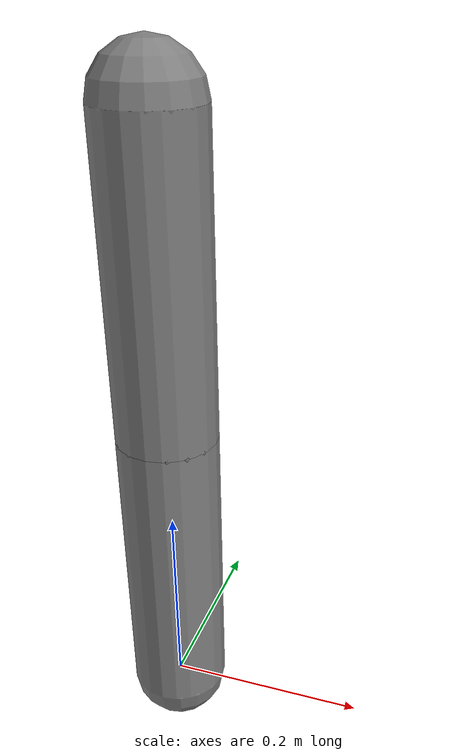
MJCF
<mujoco model="two_link">
  <compiler angle="degree"/>
  <default>
    <joint limited="true"/>
    <geom contype="1" conaffinity="1"/>
  </default>
  <option timestep="0.01"/>
  <worldbody>
    <body name="base" pos="0 0 0">
      <body name="link1" pos="0 0 0">
        <joint name="joint1" type="hinge" axis="0 1 0" pos="0 0 0" range="-180 180"/>
        <geom name="geom1" type="capsule" fromto="0 0 0 0 0 0.3" size="0.05"/>
        <body name="link2" pos="0 0 0.3">
          <joint name="joint2" type="hinge" axis="0 1 0" pos="0 0 0" range="-180 180"/>
          <geom name="geom2" type="capsule" fromto="0 0 0 0 0 0.3" size="0.05"/>
          <site name="ee" pos="0 0 0.3" size="0.02"/>
        </body>
      </body>
    </body>
  </worldbody>
  <actuator>
    <position name="act1" joint="joint1" kp="100"/>
    <position name="act2" joint="joint2" kp="100"/>
  </actuator>
</mujoco>
